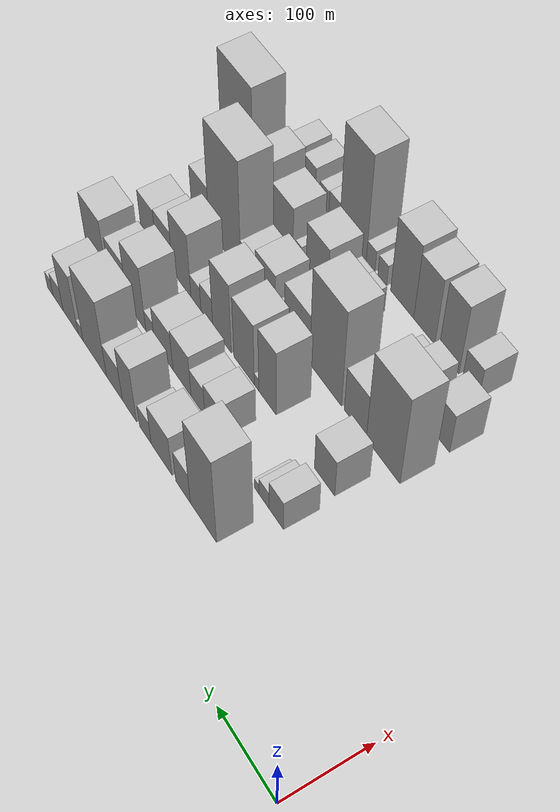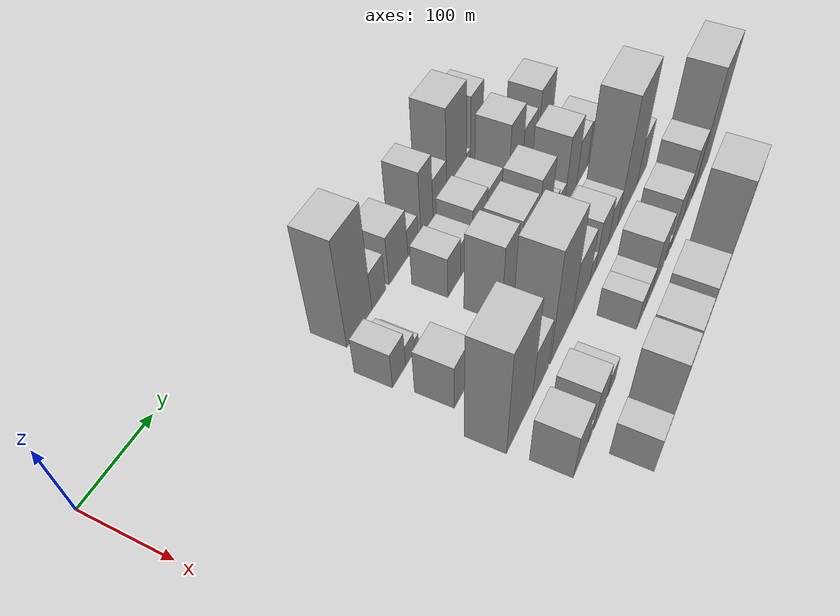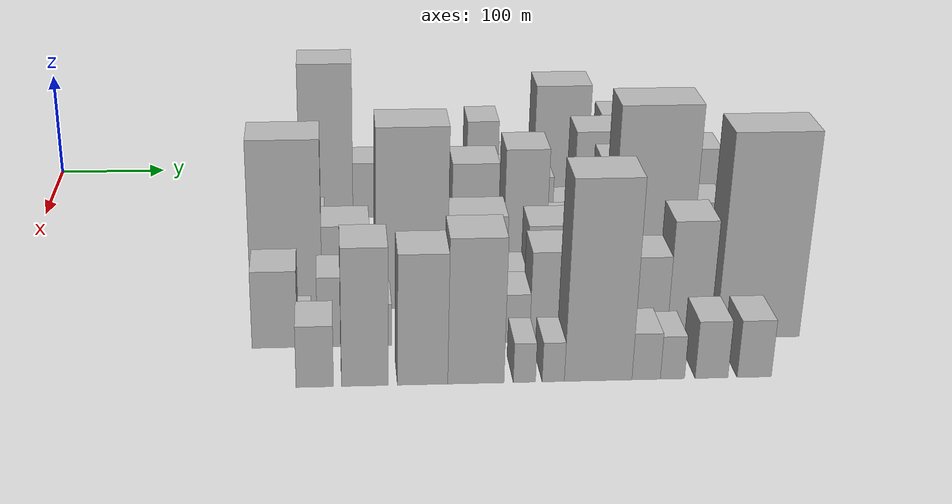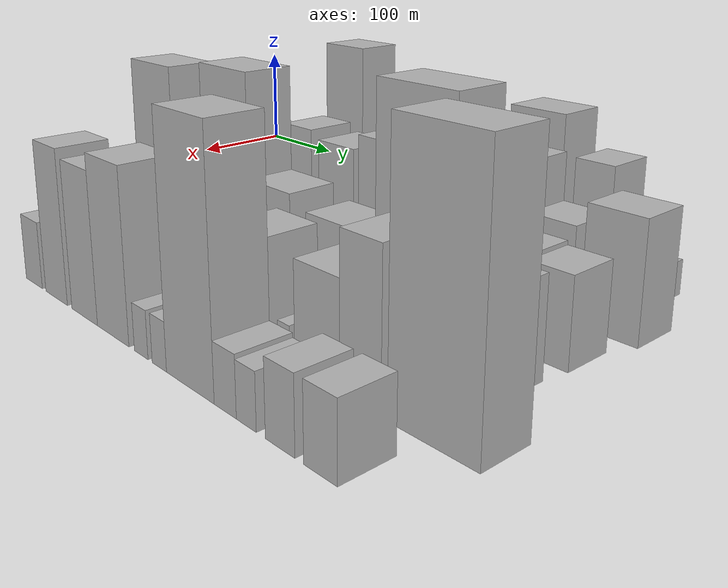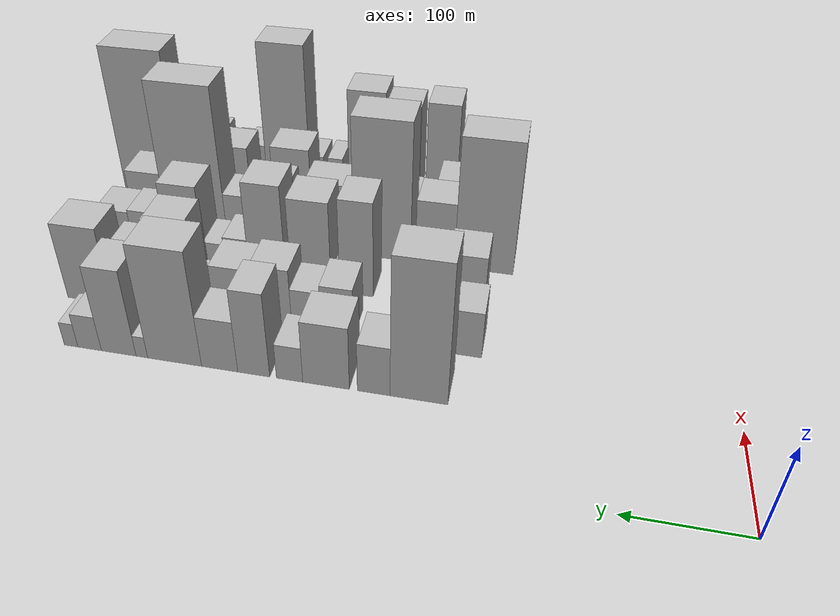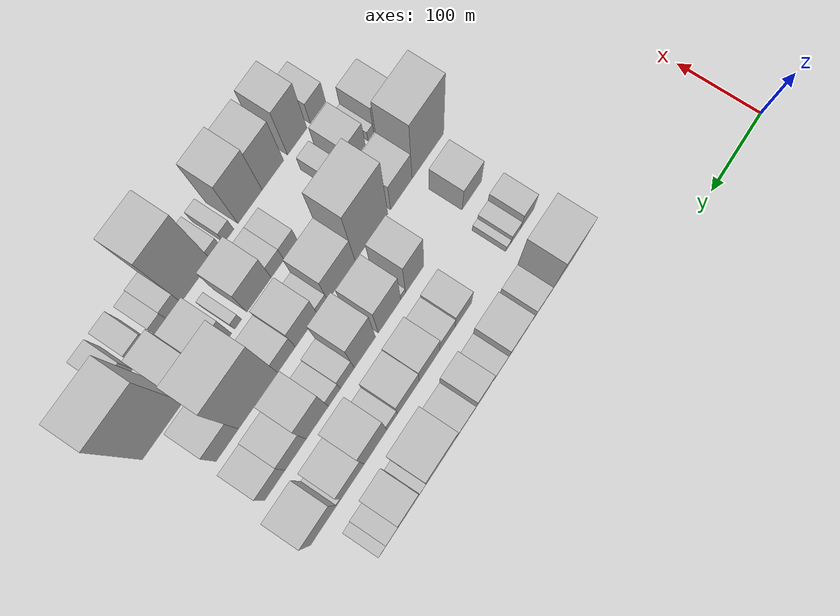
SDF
<sdf version="1.6">
 <world name="default">
  <model name="building_33">
   <static>1</static>
   <pose>100.0000 260.9782 0 0.000000 0.000000 0.000000</pose>
   <link name="link">
    <pose>0 0 75.00 0 0 0</pose>
    <collision name="collision"><geometry><box><size>40.0000 48.8718 150.0000</size></box></geometry></collision>
    <visual name="visual">
     <cast_shadows>0</cast_shadows>
     <geometry><box><size>40.0000 48.8718 150.0000</size></box></geometry>
     <material>
      <script>
       <uri>model://HANNAS_wall/materials/scripts</uri>
       <uri>model://HANNAS_wall/materials/textures</uri>
       <name>vrc/HANNAS_wall</name>
      </script>
     </material>
    </visual>
   </link>
  </model>
  <model name="building_34">
   <static>1</static>
   <pose>100.0000 299.3473 0 0.000000 0.000000 0.000000</pose>
   <link name="link">
    <pose>0 0 27.00 0 0 0</pose>
    <collision name="collision"><geometry><box><size>40.0000 27.8662 54.0000</size></box></geometry></collision>
    <visual name="visual">
     <cast_shadows>0</cast_shadows>
     <geometry><box><size>40.0000 27.8662 54.0000</size></box></geometry>
     <material>
      <script>
       <uri>model://HANNAS_wall/materials/scripts</uri>
       <uri>model://HANNAS_wall/materials/textures</uri>
       <name>vrc/HANNAS_wall</name>
      </script>
     </material>
    </visual>
   </link>
  </model>
  <model name="building_35">
   <static>1</static>
   <pose>100.0000 340.6346 0 0.000000 0.000000 0.000000</pose>
   <link name="link">
    <pose>0 0 34.50 0 0 0</pose>
    <collision name="collision"><geometry><box><size>40.0000 40.7085 69.0000</size></box></geometry></collision>
    <visual name="visual">
     <cast_shadows>0</cast_shadows>
     <geometry><box><size>40.0000 40.7085 69.0000</size></box></geometry>
     <material>
      <script>
       <uri>model://HANNAS_wall/materials/scripts</uri>
       <uri>model://HANNAS_wall/materials/textures</uri>
       <name>vrc/HANNAS_wall</name>
      </script>
     </material>
    </visual>
   </link>
  </model>
  <model name="building_36">
   <static>1</static>
   <pose>100.0000 372.6356 0 0.000000 0.000000 0.000000</pose>
   <link name="link">
    <pose>0 0 19.50 0 0 0</pose>
    <collision name="collision"><geometry><box><size>40.0000 23.2934 39.0000</size></box></geometry></collision>
    <visual name="visual">
     <cast_shadows>0</cast_shadows>
     <geometry><box><size>40.0000 23.2934 39.0000</size></box></geometry>
     <material>
      <script>
       <uri>model://HANNAS_wall/materials/scripts</uri>
       <uri>model://HANNAS_wall/materials/textures</uri>
       <name>vrc/HANNAS_wall</name>
      </script>
     </material>
    </visual>
   </link>
  </model>
  <model name="building_37">
   <static>1</static>
   <pose>100.0000 404.6304 0 0.000000 0.000000 0.000000</pose>
   <link name="link">
    <pose>0 0 46.50 0 0 0</pose>
    <collision name="collision"><geometry><box><size>40.0000 28.6962 93.0000</size></box></geometry></collision>
    <visual name="visual">
     <cast_shadows>0</cast_shadows>
     <geometry><box><size>40.0000 28.6962 93.0000</size></box></geometry>
     <material>
      <script>
       <uri>model://HANNAS_wall/materials/scripts</uri>
       <uri>model://HANNAS_wall/materials/textures</uri>
       <name>vrc/HANNAS_wall</name>
      </script>
     </material>
    </visual>
   </link>
  </model>
  <model name="building_38">
   <static>1</static>
   <pose>100.0000 435.4573 0 0.000000 0.000000 0.000000</pose>
   <link name="link">
    <pose>0 0 28.50 0 0 0</pose>
    <collision name="collision"><geometry><box><size>40.0000 32.9575 57.0000</size></box></geometry></collision>
    <visual name="visual">
     <cast_shadows>0</cast_shadows>
     <geometry><box><size>40.0000 32.9575 57.0000</size></box></geometry>
     <material>
      <script>
       <uri>model://HANNAS_wall/materials/scripts</uri>
       <uri>model://HANNAS_wall/materials/textures</uri>
       <name>vrc/HANNAS_wall</name>
      </script>
     </material>
    </visual>
   </link>
  </model>
  <model name="building_39">
   <static>1</static>
   <pose>100.0000 476.9904 0 0.000000 0.000000 0.000000</pose>
   <link name="link">
    <pose>0 0 63.00 0 0 0</pose>
    <collision name="collision"><geometry><box><size>40.0000 50.1086 126.0000</size></box></geometry></collision>
    <visual name="visual">
     <cast_shadows>0</cast_shadows>
     <geometry><box><size>40.0000 50.1086 126.0000</size></box></geometry>
     <material>
      <script>
       <uri>model://HANNAS_wall/materials/scripts</uri>
       <uri>model://HANNAS_wall/materials/textures</uri>
       <name>vrc/HANNAS_wall</name>
      </script>
     </material>
    </visual>
   </link>
  </model>
  <model name="building_40">
   <static>1</static>
   <pose>100.0000 507.4570 0 0.000000 0.000000 0.000000</pose>
   <link name="link">
    <pose>0 0 12.00 0 0 0</pose>
    <collision name="collision"><geometry><box><size>40.0000 10.8247 24.0000</size></box></geometry></collision>
    <visual name="visual">
     <cast_shadows>0</cast_shadows>
     <geometry><box><size>40.0000 10.8247 24.0000</size></box></geometry>
     <material>
      <script>
       <uri>model://HANNAS_wall/materials/scripts</uri>
       <uri>model://HANNAS_wall/materials/textures</uri>
       <name>vrc/HANNAS_wall</name>
      </script>
     </material>
    </visual>
   </link>
  </model>
  <model name="building_41">
   <static>1</static>
   <pose>100.0000 529.2690 0 0.000000 0.000000 0.000000</pose>
   <link name="link">
    <pose>0 0 48.00 0 0 0</pose>
    <collision name="collision"><geometry><box><size>40.0000 32.7993 96.0000</size></box></geometry></collision>
    <visual name="visual">
     <cast_shadows>0</cast_shadows>
     <geometry><box><size>40.0000 32.7993 96.0000</size></box></geometry>
     <material>
      <script>
       <uri>model://HANNAS_wall/materials/scripts</uri>
       <uri>model://HANNAS_wall/materials/textures</uri>
       <name>vrc/HANNAS_wall</name>
      </script>
     </material>
    </visual>
   </link>
  </model>
  <model name="building_42">
   <static>1</static>
   <pose>100.0000 556.9365 0 0.000000 0.000000 0.000000</pose>
   <link name="link">
    <pose>0 0 19.50 0 0 0</pose>
    <collision name="collision"><geometry><box><size>40.0000 22.5357 39.0000</size></box></geometry></collision>
    <visual name="visual">
     <cast_shadows>0</cast_shadows>
     <geometry><box><size>40.0000 22.5357 39.0000</size></box></geometry>
     <material>
      <script>
       <uri>model://HANNAS_wall/materials/scripts</uri>
       <uri>model://HANNAS_wall/materials/textures</uri>
       <name>vrc/HANNAS_wall</name>
      </script>
     </material>
    </visual>
   </link>
  </model>
  <model name="building_43">
   <static>1</static>
   <pose>100.0000 574.7248 0 0.000000 0.000000 0.000000</pose>
   <link name="link">
    <pose>0 0 13.50 0 0 0</pose>
    <collision name="collision"><geometry><box><size>40.0000 13.0408 27.0000</size></box></geometry></collision>
    <visual name="visual">
     <cast_shadows>0</cast_shadows>
     <geometry><box><size>40.0000 13.0408 27.0000</size></box></geometry>
     <material>
      <script>
       <uri>model://HANNAS_wall/materials/scripts</uri>
       <uri>model://HANNAS_wall/materials/textures</uri>
       <name>vrc/HANNAS_wall</name>
      </script>
     </material>
    </visual>
   </link>
  </model>
  <model name="building_83">
   <static>1</static>
   <pose>160.0000 228.3032 0 0.000000 0.000000 0.000000</pose>
   <link name="link">
    <pose>0 0 25.50 0 0 0</pose>
    <collision name="collision"><geometry><box><size>40.0000 25.8214 51.0000</size></box></geometry></collision>
    <visual name="visual">
     <cast_shadows>0</cast_shadows>
     <geometry><box><size>40.0000 25.8214 51.0000</size></box></geometry>
     <material>
      <script>
       <uri>model://HANNAS_wall/materials/scripts</uri>
       <uri>model://HANNAS_wall/materials/textures</uri>
       <name>vrc/HANNAS_wall</name>
      </script>
     </material>
    </visual>
   </link>
  </model>
  <model name="building_84">
   <static>1</static>
   <pose>160.0000 250.2023 0 0.000000 0.000000 0.000000</pose>
   <link name="link">
    <pose>0 0 15.00 0 0 0</pose>
    <collision name="collision"><geometry><box><size>40.0000 17.9766 30.0000</size></box></geometry></collision>
    <visual name="visual">
     <cast_shadows>0</cast_shadows>
     <geometry><box><size>40.0000 17.9766 30.0000</size></box></geometry>
     <material>
      <script>
       <uri>model://HANNAS_wall/materials/scripts</uri>
       <uri>model://HANNAS_wall/materials/textures</uri>
       <name>vrc/HANNAS_wall</name>
      </script>
     </material>
    </visual>
   </link>
  </model>
  <model name="building_85">
   <static>1</static>
   <pose>160.0000 263.5490 0 0.000000 0.000000 0.000000</pose>
   <link name="link">
    <pose>0 0 9.00 0 0 0</pose>
    <collision name="collision"><geometry><box><size>40.0000 8.7169 18.0000</size></box></geometry></collision>
    <visual name="visual">
     <cast_shadows>0</cast_shadows>
     <geometry><box><size>40.0000 8.7169 18.0000</size></box></geometry>
     <material>
      <script>
       <uri>model://HANNAS_wall/materials/scripts</uri>
       <uri>model://HANNAS_wall/materials/textures</uri>
       <name>vrc/HANNAS_wall</name>
      </script>
     </material>
    </visual>
   </link>
  </model>
  <model name="building_86">
   <static>1</static>
   <pose>160.0000 345.8787 0 0.000000 0.000000 0.000000</pose>
   <link name="link">
    <pose>0 0 28.50 0 0 0</pose>
    <collision name="collision"><geometry><box><size>40.0000 29.9809 57.0000</size></box></geometry></collision>
    <visual name="visual">
     <cast_shadows>0</cast_shadows>
     <geometry><box><size>40.0000 29.9809 57.0000</size></box></geometry>
     <material>
      <script>
       <uri>model://HANNAS_wall/materials/scripts</uri>
       <uri>model://HANNAS_wall/materials/textures</uri>
       <name>vrc/HANNAS_wall</name>
      </script>
     </material>
    </visual>
   </link>
  </model>
  <model name="building_87">
   <static>1</static>
   <pose>160.0000 374.4070 0 0.000000 0.000000 0.000000</pose>
   <link name="link">
    <pose>0 0 24.00 0 0 0</pose>
    <collision name="collision"><geometry><box><size>40.0000 27.0756 48.0000</size></box></geometry></collision>
    <visual name="visual">
     <cast_shadows>0</cast_shadows>
     <geometry><box><size>40.0000 27.0756 48.0000</size></box></geometry>
     <material>
      <script>
       <uri>model://HANNAS_wall/materials/scripts</uri>
       <uri>model://HANNAS_wall/materials/textures</uri>
       <name>vrc/HANNAS_wall</name>
      </script>
     </material>
    </visual>
   </link>
  </model>
  <model name="building_88">
   <static>1</static>
   <pose>160.0000 405.9585 0 0.000000 0.000000 0.000000</pose>
   <link name="link">
    <pose>0 0 34.50 0 0 0</pose>
    <collision name="collision"><geometry><box><size>40.0000 36.0275 69.0000</size></box></geometry></collision>
    <visual name="visual">
     <cast_shadows>0</cast_shadows>
     <geometry><box><size>40.0000 36.0275 69.0000</size></box></geometry>
     <material>
      <script>
       <uri>model://HANNAS_wall/materials/scripts</uri>
       <uri>model://HANNAS_wall/materials/textures</uri>
       <name>vrc/HANNAS_wall</name>
      </script>
     </material>
    </visual>
   </link>
  </model>
  <model name="building_89">
   <static>1</static>
   <pose>160.0000 442.7595 0 0.000000 0.000000 0.000000</pose>
   <link name="link">
    <pose>0 0 31.50 0 0 0</pose>
    <collision name="collision"><geometry><box><size>40.0000 37.5747 63.0000</size></box></geometry></collision>
    <visual name="visual">
     <cast_shadows>0</cast_shadows>
     <geometry><box><size>40.0000 37.5747 63.0000</size></box></geometry>
     <material>
      <script>
       <uri>model://HANNAS_wall/materials/scripts</uri>
       <uri>model://HANNAS_wall/materials/textures</uri>
       <name>vrc/HANNAS_wall</name>
      </script>
     </material>
    </visual>
   </link>
  </model>
  <model name="building_90">
   <static>1</static>
   <pose>160.0000 470.6949 0 0.000000 0.000000 0.000000</pose>
   <link name="link">
    <pose>0 0 18.00 0 0 0</pose>
    <collision name="collision"><geometry><box><size>40.0000 18.2961 36.0000</size></box></geometry></collision>
    <visual name="visual">
     <cast_shadows>0</cast_shadows>
     <geometry><box><size>40.0000 18.2961 36.0000</size></box></geometry>
     <material>
      <script>
       <uri>model://HANNAS_wall/materials/scripts</uri>
       <uri>model://HANNAS_wall/materials/textures</uri>
       <name>vrc/HANNAS_wall</name>
      </script>
     </material>
    </visual>
   </link>
  </model>
  <model name="building_91">
   <static>1</static>
   <pose>160.0000 499.2308 0 0.000000 0.000000 0.000000</pose>
   <link name="link">
    <pose>0 0 52.50 0 0 0</pose>
    <collision name="collision"><geometry><box><size>40.0000 38.7756 105.0000</size></box></geometry></collision>
    <visual name="visual">
     <cast_shadows>0</cast_shadows>
     <geometry><box><size>40.0000 38.7756 105.0000</size></box></geometry>
     <material>
      <script>
       <uri>model://HANNAS_wall/materials/scripts</uri>
       <uri>model://HANNAS_wall/materials/textures</uri>
       <name>vrc/HANNAS_wall</name>
      </script>
     </material>
    </visual>
   </link>
  </model>
  <model name="building_92">
   <static>1</static>
   <pose>160.0000 538.1155 0 0.000000 0.000000 0.000000</pose>
   <link name="link">
    <pose>0 0 34.50 0 0 0</pose>
    <collision name="collision"><geometry><box><size>40.0000 38.9938 69.0000</size></box></geometry></collision>
    <visual name="visual">
     <cast_shadows>0</cast_shadows>
     <geometry><box><size>40.0000 38.9938 69.0000</size></box></geometry>
     <material>
      <script>
       <uri>model://HANNAS_wall/materials/scripts</uri>
       <uri>model://HANNAS_wall/materials/textures</uri>
       <name>vrc/HANNAS_wall</name>
      </script>
     </material>
    </visual>
   </link>
  </model>
  <model name="building_93">
   <static>1</static>
   <pose>160.0000 561.1563 0 0.000000 0.000000 0.000000</pose>
   <link name="link">
    <pose>0 0 7.50 0 0 0</pose>
    <collision name="collision"><geometry><box><size>40.0000 7.0879 15.0000</size></box></geometry></collision>
    <visual name="visual">
     <cast_shadows>0</cast_shadows>
     <geometry><box><size>40.0000 7.0879 15.0000</size></box></geometry>
     <material>
      <script>
       <uri>model://HANNAS_wall/materials/scripts</uri>
       <uri>model://HANNAS_wall/materials/textures</uri>
       <name>vrc/HANNAS_wall</name>
      </script>
     </material>
    </visual>
   </link>
  </model>
  <model name="building_94">
   <static>1</static>
   <pose>160.0000 586.8665 0 0.000000 0.000000 0.000000</pose>
   <link name="link">
    <pose>0 0 43.50 0 0 0</pose>
    <collision name="collision"><geometry><box><size>40.0000 44.3326 87.0000</size></box></geometry></collision>
    <visual name="visual">
     <cast_shadows>0</cast_shadows>
     <geometry><box><size>40.0000 44.3326 87.0000</size></box></geometry>
     <material>
      <script>
       <uri>model://HANNAS_wall/materials/scripts</uri>
       <uri>model://HANNAS_wall/materials/textures</uri>
       <name>vrc/HANNAS_wall</name>
      </script>
     </material>
    </visual>
   </link>
  </model>
  <model name="building_138">
   <static>1</static>
   <pose>220.0000 237.9180 0 0.000000 0.000000 0.000000</pose>
   <link name="link">
    <pose>0 0 31.50 0 0 0</pose>
    <collision name="collision"><geometry><box><size>40.0000 35.7490 63.0000</size></box></geometry></collision>
    <visual name="visual">
     <cast_shadows>0</cast_shadows>
     <geometry><box><size>40.0000 35.7490 63.0000</size></box></geometry>
     <material>
      <script>
       <uri>model://HANNAS_wall/materials/scripts</uri>
       <uri>model://HANNAS_wall/materials/textures</uri>
       <name>vrc/HANNAS_wall</name>
      </script>
     </material>
    </visual>
   </link>
  </model>
  <model name="building_139">
   <static>1</static>
   <pose>220.0000 341.8362 0 0.000000 0.000000 0.000000</pose>
   <link name="link">
    <pose>0 0 54.00 0 0 0</pose>
    <collision name="collision"><geometry><box><size>40.0000 32.6957 108.0000</size></box></geometry></collision>
    <visual name="visual">
     <cast_shadows>0</cast_shadows>
     <geometry><box><size>40.0000 32.6957 108.0000</size></box></geometry>
     <material>
      <script>
       <uri>model://HANNAS_wall/materials/scripts</uri>
       <uri>model://HANNAS_wall/materials/textures</uri>
       <name>vrc/HANNAS_wall</name>
      </script>
     </material>
    </visual>
   </link>
  </model>
  <model name="building_140">
   <static>1</static>
   <pose>220.0000 362.4280 0 0.000000 0.000000 0.000000</pose>
   <link name="link">
    <pose>0 0 10.50 0 0 0</pose>
    <collision name="collision"><geometry><box><size>40.0000 8.4878 21.0000</size></box></geometry></collision>
    <visual name="visual">
     <cast_shadows>0</cast_shadows>
     <geometry><box><size>40.0000 8.4878 21.0000</size></box></geometry>
     <material>
      <script>
       <uri>model://HANNAS_wall/materials/scripts</uri>
       <uri>model://HANNAS_wall/materials/textures</uri>
       <name>vrc/HANNAS_wall</name>
      </script>
     </material>
    </visual>
   </link>
  </model>
  <model name="building_141">
   <static>1</static>
   <pose>220.0000 386.4213 0 0.000000 0.000000 0.000000</pose>
   <link name="link">
    <pose>0 0 51.00 0 0 0</pose>
    <collision name="collision"><geometry><box><size>40.0000 39.4989 102.0000</size></box></geometry></collision>
    <visual name="visual">
     <cast_shadows>0</cast_shadows>
     <geometry><box><size>40.0000 39.4989 102.0000</size></box></geometry>
     <material>
      <script>
       <uri>model://HANNAS_wall/materials/scripts</uri>
       <uri>model://HANNAS_wall/materials/textures</uri>
       <name>vrc/HANNAS_wall</name>
      </script>
     </material>
    </visual>
   </link>
  </model>
  <model name="building_142">
   <static>1</static>
   <pose>220.0000 429.4711 0 0.000000 0.000000 0.000000</pose>
   <link name="link">
    <pose>0 0 57.00 0 0 0</pose>
    <collision name="collision"><geometry><box><size>40.0000 36.6007 114.0000</size></box></geometry></collision>
    <visual name="visual">
     <cast_shadows>0</cast_shadows>
     <geometry><box><size>40.0000 36.6007 114.0000</size></box></geometry>
     <material>
      <script>
       <uri>model://HANNAS_wall/materials/scripts</uri>
       <uri>model://HANNAS_wall/materials/textures</uri>
       <name>vrc/HANNAS_wall</name>
      </script>
     </material>
    </visual>
   </link>
  </model>
  <model name="building_143">
   <static>1</static>
   <pose>220.0000 459.7852 0 0.000000 0.000000 0.000000</pose>
   <link name="link">
    <pose>0 0 24.00 0 0 0</pose>
    <collision name="collision"><geometry><box><size>40.0000 24.0276 48.0000</size></box></geometry></collision>
    <visual name="visual">
     <cast_shadows>0</cast_shadows>
     <geometry><box><size>40.0000 24.0276 48.0000</size></box></geometry>
     <material>
      <script>
       <uri>model://HANNAS_wall/materials/scripts</uri>
       <uri>model://HANNAS_wall/materials/textures</uri>
       <name>vrc/HANNAS_wall</name>
      </script>
     </material>
    </visual>
   </link>
  </model>
  <model name="building_144">
   <static>1</static>
   <pose>220.0000 482.0108 0 0.000000 0.000000 0.000000</pose>
   <link name="link">
    <pose>0 0 19.50 0 0 0</pose>
    <collision name="collision"><geometry><box><size>40.0000 20.4236 39.0000</size></box></geometry></collision>
    <visual name="visual">
     <cast_shadows>0</cast_shadows>
     <geometry><box><size>40.0000 20.4236 39.0000</size></box></geometry>
     <material>
      <script>
       <uri>model://HANNAS_wall/materials/scripts</uri>
       <uri>model://HANNAS_wall/materials/textures</uri>
       <name>vrc/HANNAS_wall</name>
      </script>
     </material>
    </visual>
   </link>
  </model>
  <model name="building_145">
   <static>1</static>
   <pose>220.0000 511.0864 0 0.000000 0.000000 0.000000</pose>
   <link name="link">
    <pose>0 0 51.00 0 0 0</pose>
    <collision name="collision"><geometry><box><size>40.0000 37.7275 102.0000</size></box></geometry></collision>
    <visual name="visual">
     <cast_shadows>0</cast_shadows>
     <geometry><box><size>40.0000 37.7275 102.0000</size></box></geometry>
     <material>
      <script>
       <uri>model://HANNAS_wall/materials/scripts</uri>
       <uri>model://HANNAS_wall/materials/textures</uri>
       <name>vrc/HANNAS_wall</name>
      </script>
     </material>
    </visual>
   </link>
  </model>
  <model name="building_146">
   <static>1</static>
   <pose>220.0000 547.6094 0 0.000000 0.000000 0.000000</pose>
   <link name="link">
    <pose>0 0 33.00 0 0 0</pose>
    <collision name="collision"><geometry><box><size>40.0000 35.3186 66.0000</size></box></geometry></collision>
    <visual name="visual">
     <cast_shadows>0</cast_shadows>
     <geometry><box><size>40.0000 35.3186 66.0000</size></box></geometry>
     <material>
      <script>
       <uri>model://HANNAS_wall/materials/scripts</uri>
       <uri>model://HANNAS_wall/materials/textures</uri>
       <name>vrc/HANNAS_wall</name>
      </script>
     </material>
    </visual>
   </link>
  </model>
  <model name="building_147">
   <static>1</static>
   <pose>220.0000 582.0563 0 0.000000 0.000000 0.000000</pose>
   <link name="link">
    <pose>0 0 31.50 0 0 0</pose>
    <collision name="collision"><geometry><box><size>40.0000 33.5753 63.0000</size></box></geometry></collision>
    <visual name="visual">
     <cast_shadows>0</cast_shadows>
     <geometry><box><size>40.0000 33.5753 63.0000</size></box></geometry>
     <material>
      <script>
       <uri>model://HANNAS_wall/materials/scripts</uri>
       <uri>model://HANNAS_wall/materials/textures</uri>
       <name>vrc/HANNAS_wall</name>
      </script>
     </material>
    </visual>
   </link>
  </model>
  <model name="building_193">
   <static>1</static>
   <pose>280.0000 227.5097 0 0.000000 0.000000 0.000000</pose>
   <link name="link">
    <pose>0 0 75.00 0 0 0</pose>
    <collision name="collision"><geometry><box><size>40.0000 58.1360 150.0000</size></box></geometry></collision>
    <visual name="visual">
     <cast_shadows>0</cast_shadows>
     <geometry><box><size>40.0000 58.1360 150.0000</size></box></geometry>
     <material>
      <script>
       <uri>model://HANNAS_wall/materials/scripts</uri>
       <uri>model://HANNAS_wall/materials/textures</uri>
       <name>vrc/HANNAS_wall</name>
      </script>
     </material>
    </visual>
   </link>
  </model>
  <model name="building_194">
   <static>1</static>
   <pose>280.0000 276.0031 0 0.000000 0.000000 0.000000</pose>
   <link name="link">
    <pose>0 0 37.50 0 0 0</pose>
    <collision name="collision"><geometry><box><size>40.0000 38.8506 75.0000</size></box></geometry></collision>
    <visual name="visual">
     <cast_shadows>0</cast_shadows>
     <geometry><box><size>40.0000 38.8506 75.0000</size></box></geometry>
     <material>
      <script>
       <uri>model://HANNAS_wall/materials/scripts</uri>
       <uri>model://HANNAS_wall/materials/textures</uri>
       <name>vrc/HANNAS_wall</name>
      </script>
     </material>
    </visual>
   </link>
  </model>
  <model name="building_195">
   <static>1</static>
   <pose>280.0000 329.6060 0 0.000000 0.000000 0.000000</pose>
   <link name="link">
    <pose>0 0 79.50 0 0 0</pose>
    <collision name="collision"><geometry><box><size>40.0000 58.3553 159.0000</size></box></geometry></collision>
    <visual name="visual">
     <cast_shadows>0</cast_shadows>
     <geometry><box><size>40.0000 58.3553 159.0000</size></box></geometry>
     <material>
      <script>
       <uri>model://HANNAS_wall/materials/scripts</uri>
       <uri>model://HANNAS_wall/materials/textures</uri>
       <name>vrc/HANNAS_wall</name>
      </script>
     </material>
    </visual>
   </link>
  </model>
  <model name="building_196">
   <static>1</static>
   <pose>280.0000 382.8442 0 0.000000 0.000000 0.000000</pose>
   <link name="link">
    <pose>0 0 40.50 0 0 0</pose>
    <collision name="collision"><geometry><box><size>40.0000 48.1210 81.0000</size></box></geometry></collision>
    <visual name="visual">
     <cast_shadows>0</cast_shadows>
     <geometry><box><size>40.0000 48.1210 81.0000</size></box></geometry>
     <material>
      <script>
       <uri>model://HANNAS_wall/materials/scripts</uri>
       <uri>model://HANNAS_wall/materials/textures</uri>
       <name>vrc/HANNAS_wall</name>
      </script>
     </material>
    </visual>
   </link>
  </model>
  <model name="building_197">
   <static>1</static>
   <pose>280.0000 415.4322 0 0.000000 0.000000 0.000000</pose>
   <link name="link">
    <pose>0 0 15.00 0 0 0</pose>
    <collision name="collision"><geometry><box><size>40.0000 17.0550 30.0000</size></box></geometry></collision>
    <visual name="visual">
     <cast_shadows>0</cast_shadows>
     <geometry><box><size>40.0000 17.0550 30.0000</size></box></geometry>
     <material>
      <script>
       <uri>model://HANNAS_wall/materials/scripts</uri>
       <uri>model://HANNAS_wall/materials/textures</uri>
       <name>vrc/HANNAS_wall</name>
      </script>
     </material>
    </visual>
   </link>
  </model>
  <model name="building_198">
   <static>1</static>
   <pose>280.0000 443.1179 0 0.000000 0.000000 0.000000</pose>
   <link name="link">
    <pose>0 0 36.00 0 0 0</pose>
    <collision name="collision"><geometry><box><size>40.0000 38.3164 72.0000</size></box></geometry></collision>
    <visual name="visual">
     <cast_shadows>0</cast_shadows>
     <geometry><box><size>40.0000 38.3164 72.0000</size></box></geometry>
     <material>
      <script>
       <uri>model://HANNAS_wall/materials/scripts</uri>
       <uri>model://HANNAS_wall/materials/textures</uri>
       <name>vrc/HANNAS_wall</name>
      </script>
     </material>
    </visual>
   </link>
  </model>
  <model name="building_199">
   <static>1</static>
   <pose>280.0000 477.3962 0 0.000000 0.000000 0.000000</pose>
   <link name="link">
    <pose>0 0 27.00 0 0 0</pose>
    <collision name="collision"><geometry><box><size>40.0000 30.2402 54.0000</size></box></geometry></collision>
    <visual name="visual">
     <cast_shadows>0</cast_shadows>
     <geometry><box><size>40.0000 30.2402 54.0000</size></box></geometry>
     <material>
      <script>
       <uri>model://HANNAS_wall/materials/scripts</uri>
       <uri>model://HANNAS_wall/materials/textures</uri>
       <name>vrc/HANNAS_wall</name>
      </script>
     </material>
    </visual>
   </link>
  </model>
  <model name="building_200">
   <static>1</static>
   <pose>280.0000 525.2418 0 0.000000 0.000000 0.000000</pose>
   <link name="link">
    <pose>0 0 87.00 0 0 0</pose>
    <collision name="collision"><geometry><box><size>40.0000 65.4510 174.0000</size></box></geometry></collision>
    <visual name="visual">
     <cast_shadows>0</cast_shadows>
     <geometry><box><size>40.0000 65.4510 174.0000</size></box></geometry>
     <material>
      <script>
       <uri>model://HANNAS_wall/materials/scripts</uri>
       <uri>model://HANNAS_wall/materials/textures</uri>
       <name>vrc/HANNAS_wall</name>
      </script>
     </material>
    </visual>
   </link>
  </model>
  <model name="building_201">
   <static>1</static>
   <pose>280.0000 576.5206 0 0.000000 0.000000 0.000000</pose>
   <link name="link">
    <pose>0 0 34.50 0 0 0</pose>
    <collision name="collision"><geometry><box><size>40.0000 37.1066 69.0000</size></box></geometry></collision>
    <visual name="visual">
     <cast_shadows>0</cast_shadows>
     <geometry><box><size>40.0000 37.1066 69.0000</size></box></geometry>
     <material>
      <script>
       <uri>model://HANNAS_wall/materials/scripts</uri>
       <uri>model://HANNAS_wall/materials/textures</uri>
       <name>vrc/HANNAS_wall</name>
      </script>
     </material>
    </visual>
   </link>
  </model>
  <model name="building_247">
   <static>1</static>
   <pose>340.0000 219.4632 0 0.000000 0.000000 0.000000</pose>
   <link name="link">
    <pose>0 0 33.00 0 0 0</pose>
    <collision name="collision"><geometry><box><size>40.0000 35.4042 66.0000</size></box></geometry></collision>
    <visual name="visual">
     <cast_shadows>0</cast_shadows>
     <geometry><box><size>40.0000 35.4042 66.0000</size></box></geometry>
     <material>
      <script>
       <uri>model://HANNAS_wall/materials/scripts</uri>
       <uri>model://HANNAS_wall/materials/textures</uri>
       <name>vrc/HANNAS_wall</name>
      </script>
     </material>
    </visual>
   </link>
  </model>
  <model name="building_248">
   <static>1</static>
   <pose>340.0000 242.3756 0 0.000000 0.000000 0.000000</pose>
   <link name="link">
    <pose>0 0 12.00 0 0 0</pose>
    <collision name="collision"><geometry><box><size>40.0000 10.4206 24.0000</size></box></geometry></collision>
    <visual name="visual">
     <cast_shadows>0</cast_shadows>
     <geometry><box><size>40.0000 10.4206 24.0000</size></box></geometry>
     <material>
      <script>
       <uri>model://HANNAS_wall/materials/scripts</uri>
       <uri>model://HANNAS_wall/materials/textures</uri>
       <name>vrc/HANNAS_wall</name>
      </script>
     </material>
    </visual>
   </link>
  </model>
  <model name="building_249">
   <static>1</static>
   <pose>340.0000 268.3771 0 0.000000 0.000000 0.000000</pose>
   <link name="link">
    <pose>0 0 30.00 0 0 0</pose>
    <collision name="collision"><geometry><box><size>40.0000 31.5825 60.0000</size></box></geometry></collision>
    <visual name="visual">
     <cast_shadows>0</cast_shadows>
     <geometry><box><size>40.0000 31.5825 60.0000</size></box></geometry>
     <material>
      <script>
       <uri>model://HANNAS_wall/materials/scripts</uri>
       <uri>model://HANNAS_wall/materials/textures</uri>
       <name>vrc/HANNAS_wall</name>
      </script>
     </material>
    </visual>
   </link>
  </model>
  <model name="building_250">
   <static>1</static>
   <pose>340.0000 299.8444 0 0.000000 0.000000 0.000000</pose>
   <link name="link">
    <pose>0 0 18.00 0 0 0</pose>
    <collision name="collision"><geometry><box><size>40.0000 21.3521 36.0000</size></box></geometry></collision>
    <visual name="visual">
     <cast_shadows>0</cast_shadows>
     <geometry><box><size>40.0000 21.3521 36.0000</size></box></geometry>
     <material>
      <script>
       <uri>model://HANNAS_wall/materials/scripts</uri>
       <uri>model://HANNAS_wall/materials/textures</uri>
       <name>vrc/HANNAS_wall</name>
      </script>
     </material>
    </visual>
   </link>
  </model>
  <model name="building_251">
   <static>1</static>
   <pose>340.0000 384.9716 0 0.000000 0.000000 0.000000</pose>
   <link name="link">
    <pose>0 0 21.00 0 0 0</pose>
    <collision name="collision"><geometry><box><size>40.0000 23.6341 42.0000</size></box></geometry></collision>
    <visual name="visual">
     <cast_shadows>0</cast_shadows>
     <geometry><box><size>40.0000 23.6341 42.0000</size></box></geometry>
     <material>
      <script>
       <uri>model://HANNAS_wall/materials/scripts</uri>
       <uri>model://HANNAS_wall/materials/textures</uri>
       <name>vrc/HANNAS_wall</name>
      </script>
     </material>
    </visual>
   </link>
  </model>
  <model name="building_252">
   <static>1</static>
   <pose>340.0000 407.7549 0 0.000000 0.000000 0.000000</pose>
   <link name="link">
    <pose>0 0 21.00 0 0 0</pose>
    <collision name="collision"><geometry><box><size>40.0000 21.9324 42.0000</size></box></geometry></collision>
    <visual name="visual">
     <cast_shadows>0</cast_shadows>
     <geometry><box><size>40.0000 21.9324 42.0000</size></box></geometry>
     <material>
      <script>
       <uri>model://HANNAS_wall/materials/scripts</uri>
       <uri>model://HANNAS_wall/materials/textures</uri>
       <name>vrc/HANNAS_wall</name>
      </script>
     </material>
    </visual>
   </link>
  </model>
  <model name="building_253">
   <static>1</static>
   <pose>340.0000 439.5155 0 0.000000 0.000000 0.000000</pose>
   <link name="link">
    <pose>0 0 39.00 0 0 0</pose>
    <collision name="collision"><geometry><box><size>40.0000 41.5889 78.0000</size></box></geometry></collision>
    <visual name="visual">
     <cast_shadows>0</cast_shadows>
     <geometry><box><size>40.0000 41.5889 78.0000</size></box></geometry>
     <material>
      <script>
       <uri>model://HANNAS_wall/materials/scripts</uri>
       <uri>model://HANNAS_wall/materials/textures</uri>
       <name>vrc/HANNAS_wall</name>
      </script>
     </material>
    </visual>
   </link>
  </model>
  <model name="building_254">
   <static>1</static>
   <pose>340.0000 475.1348 0 0.000000 0.000000 0.000000</pose>
   <link name="link">
    <pose>0 0 13.50 0 0 0</pose>
    <collision name="collision"><geometry><box><size>40.0000 11.6497 27.0000</size></box></geometry></collision>
    <visual name="visual">
     <cast_shadows>0</cast_shadows>
     <geometry><box><size>40.0000 11.6497 27.0000</size></box></geometry>
     <material>
      <script>
       <uri>model://HANNAS_wall/materials/scripts</uri>
       <uri>model://HANNAS_wall/materials/textures</uri>
       <name>vrc/HANNAS_wall</name>
      </script>
     </material>
    </visual>
   </link>
  </model>
  <model name="building_255">
   <static>1</static>
   <pose>340.0000 506.5734 0 0.000000 0.000000 0.000000</pose>
   <link name="link">
    <pose>0 0 36.00 0 0 0</pose>
    <collision name="collision"><geometry><box><size>40.0000 41.2274 72.0000</size></box></geometry></collision>
    <visual name="visual">
     <cast_shadows>0</cast_shadows>
     <geometry><box><size>40.0000 41.2274 72.0000</size></box></geometry>
     <material>
      <script>
       <uri>model://HANNAS_wall/materials/scripts</uri>
       <uri>model://HANNAS_wall/materials/textures</uri>
       <name>vrc/HANNAS_wall</name>
      </script>
     </material>
    </visual>
   </link>
  </model>
  <model name="building_256">
   <static>1</static>
   <pose>340.0000 544.2875 0 0.000000 0.000000 0.000000</pose>
   <link name="link">
    <pose>0 0 51.00 0 0 0</pose>
    <collision name="collision"><geometry><box><size>40.0000 34.2008 102.0000</size></box></geometry></collision>
    <visual name="visual">
     <cast_shadows>0</cast_shadows>
     <geometry><box><size>40.0000 34.2008 102.0000</size></box></geometry>
     <material>
      <script>
       <uri>model://HANNAS_wall/materials/scripts</uri>
       <uri>model://HANNAS_wall/materials/textures</uri>
       <name>vrc/HANNAS_wall</name>
      </script>
     </material>
    </visual>
   </link>
  </model>
  <model name="building_257">
   <static>1</static>
   <pose>340.0000 599.5089 0 0.000000 0.000000 0.000000</pose>
   <link name="link">
    <pose>0 0 87.00 0 0 0</pose>
    <collision name="collision"><geometry><box><size>40.0000 66.2420 174.0000</size></box></geometry></collision>
    <visual name="visual">
     <cast_shadows>0</cast_shadows>
     <geometry><box><size>40.0000 66.2420 174.0000</size></box></geometry>
     <material>
      <script>
       <uri>model://HANNAS_wall/materials/scripts</uri>
       <uri>model://HANNAS_wall/materials/textures</uri>
       <name>vrc/HANNAS_wall</name>
      </script>
     </material>
    </visual>
   </link>
  </model>
  <model name="building_296">
   <static>1</static>
   <pose>400.0000 250.6221 0 0.000000 0.000000 0.000000</pose>
   <link name="link">
    <pose>0 0 25.50 0 0 0</pose>
    <collision name="collision"><geometry><box><size>40.0000 27.7812 51.0000</size></box></geometry></collision>
    <visual name="visual">
     <cast_shadows>0</cast_shadows>
     <geometry><box><size>40.0000 27.7812 51.0000</size></box></geometry>
     <material>
      <script>
       <uri>model://HANNAS_wall/materials/scripts</uri>
       <uri>model://HANNAS_wall/materials/textures</uri>
       <name>vrc/HANNAS_wall</name>
      </script>
     </material>
    </visual>
   </link>
  </model>
  <model name="building_297">
   <static>1</static>
   <pose>400.0000 287.8401 0 0.000000 0.000000 0.000000</pose>
   <link name="link">
    <pose>0 0 57.00 0 0 0</pose>
    <collision name="collision"><geometry><box><size>40.0000 34.6549 114.0000</size></box></geometry></collision>
    <visual name="visual">
     <cast_shadows>0</cast_shadows>
     <geometry><box><size>40.0000 34.6549 114.0000</size></box></geometry>
     <material>
      <script>
       <uri>model://HANNAS_wall/materials/scripts</uri>
       <uri>model://HANNAS_wall/materials/textures</uri>
       <name>vrc/HANNAS_wall</name>
      </script>
     </material>
    </visual>
   </link>
  </model>
  <model name="building_298">
   <static>1</static>
   <pose>400.0000 330.9384 0 0.000000 0.000000 0.000000</pose>
   <link name="link">
    <pose>0 0 54.00 0 0 0</pose>
    <collision name="collision"><geometry><box><size>40.0000 37.5416 108.0000</size></box></geometry></collision>
    <visual name="visual">
     <cast_shadows>0</cast_shadows>
     <geometry><box><size>40.0000 37.5416 108.0000</size></box></geometry>
     <material>
      <script>
       <uri>model://HANNAS_wall/materials/scripts</uri>
       <uri>model://HANNAS_wall/materials/textures</uri>
       <name>vrc/HANNAS_wall</name>
      </script>
     </material>
    </visual>
   </link>
  </model>
  <model name="building_299">
   <static>1</static>
   <pose>400.0000 370.7527 0 0.000000 0.000000 0.000000</pose>
   <link name="link">
    <pose>0 0 60.00 0 0 0</pose>
    <collision name="collision"><geometry><box><size>40.0000 42.0871 120.0000</size></box></geometry></collision>
    <visual name="visual">
     <cast_shadows>0</cast_shadows>
     <geometry><box><size>40.0000 42.0871 120.0000</size></box></geometry>
     <material>
      <script>
       <uri>model://HANNAS_wall/materials/scripts</uri>
       <uri>model://HANNAS_wall/materials/textures</uri>
       <name>vrc/HANNAS_wall</name>
      </script>
     </material>
    </visual>
   </link>
  </model>
  <model name="building_300">
   <static>1</static>
   <pose>400.0000 407.1383 0 0.000000 0.000000 0.000000</pose>
   <link name="link">
    <pose>0 0 16.50 0 0 0</pose>
    <collision name="collision"><geometry><box><size>40.0000 16.6841 33.0000</size></box></geometry></collision>
    <visual name="visual">
     <cast_shadows>0</cast_shadows>
     <geometry><box><size>40.0000 16.6841 33.0000</size></box></geometry>
     <material>
      <script>
       <uri>model://HANNAS_wall/materials/scripts</uri>
       <uri>model://HANNAS_wall/materials/textures</uri>
       <name>vrc/HANNAS_wall</name>
      </script>
     </material>
    </visual>
   </link>
  </model>
  <model name="building_301">
   <static>1</static>
   <pose>400.0000 428.8211 0 0.000000 0.000000 0.000000</pose>
   <link name="link">
    <pose>0 0 16.50 0 0 0</pose>
    <collision name="collision"><geometry><box><size>40.0000 16.6816 33.0000</size></box></geometry></collision>
    <visual name="visual">
     <cast_shadows>0</cast_shadows>
     <geometry><box><size>40.0000 16.6816 33.0000</size></box></geometry>
     <material>
      <script>
       <uri>model://HANNAS_wall/materials/scripts</uri>
       <uri>model://HANNAS_wall/materials/textures</uri>
       <name>vrc/HANNAS_wall</name>
      </script>
     </material>
    </visual>
   </link>
  </model>
  <model name="building_302">
   <static>1</static>
   <pose>400.0000 462.6419 0 0.000000 0.000000 0.000000</pose>
   <link name="link">
    <pose>0 0 82.50 0 0 0</pose>
    <collision name="collision"><geometry><box><size>40.0000 50.9598 165.0000</size></box></geometry></collision>
    <visual name="visual">
     <cast_shadows>0</cast_shadows>
     <geometry><box><size>40.0000 50.9598 165.0000</size></box></geometry>
     <material>
      <script>
       <uri>model://HANNAS_wall/materials/scripts</uri>
       <uri>model://HANNAS_wall/materials/textures</uri>
       <name>vrc/HANNAS_wall</name>
      </script>
     </material>
    </visual>
   </link>
  </model>
  <model name="building_303">
   <static>1</static>
   <pose>400.0000 498.8661 0 0.000000 0.000000 0.000000</pose>
   <link name="link">
    <pose>0 0 19.50 0 0 0</pose>
    <collision name="collision"><geometry><box><size>40.0000 21.4886 39.0000</size></box></geometry></collision>
    <visual name="visual">
     <cast_shadows>0</cast_shadows>
     <geometry><box><size>40.0000 21.4886 39.0000</size></box></geometry>
     <material>
      <script>
       <uri>model://HANNAS_wall/materials/scripts</uri>
       <uri>model://HANNAS_wall/materials/textures</uri>
       <name>vrc/HANNAS_wall</name>
      </script>
     </material>
    </visual>
   </link>
  </model>
  <model name="building_304">
   <static>1</static>
   <pose>400.0000 518.7685 0 0.000000 0.000000 0.000000</pose>
   <link name="link">
    <pose>0 0 18.00 0 0 0</pose>
    <collision name="collision"><geometry><box><size>40.0000 18.3163 36.0000</size></box></geometry></collision>
    <visual name="visual">
     <cast_shadows>0</cast_shadows>
     <geometry><box><size>40.0000 18.3163 36.0000</size></box></geometry>
     <material>
      <script>
       <uri>model://HANNAS_wall/materials/scripts</uri>
       <uri>model://HANNAS_wall/materials/textures</uri>
       <name>vrc/HANNAS_wall</name>
      </script>
     </material>
    </visual>
   </link>
  </model>
  <model name="building_305">
   <static>1</static>
   <pose>400.0000 548.3813 0 0.000000 0.000000 0.000000</pose>
   <link name="link">
    <pose>0 0 24.00 0 0 0</pose>
    <collision name="collision"><geometry><box><size>40.0000 24.9094 48.0000</size></box></geometry></collision>
    <visual name="visual">
     <cast_shadows>0</cast_shadows>
     <geometry><box><size>40.0000 24.9094 48.0000</size></box></geometry>
     <material>
      <script>
       <uri>model://HANNAS_wall/materials/scripts</uri>
       <uri>model://HANNAS_wall/materials/textures</uri>
       <name>vrc/HANNAS_wall</name>
      </script>
     </material>
    </visual>
   </link>
  </model>
  <model name="building_306">
   <static>1</static>
   <pose>400.0000 580.7908 0 0.000000 0.000000 0.000000</pose>
   <link name="link">
    <pose>0 0 24.00 0 0 0</pose>
    <collision name="collision"><geometry><box><size>40.0000 25.9097 48.0000</size></box></geometry></collision>
    <visual name="visual">
     <cast_shadows>0</cast_shadows>
     <geometry><box><size>40.0000 25.9097 48.0000</size></box></geometry>
     <material>
      <script>
       <uri>model://HANNAS_wall/materials/scripts</uri>
       <uri>model://HANNAS_wall/materials/textures</uri>
       <name>vrc/HANNAS_wall</name>
      </script>
     </material>
    </visual>
   </link>
  </model>
 </world>
</sdf>
